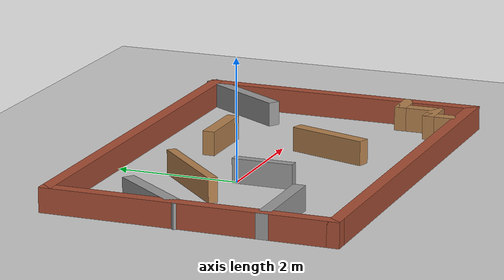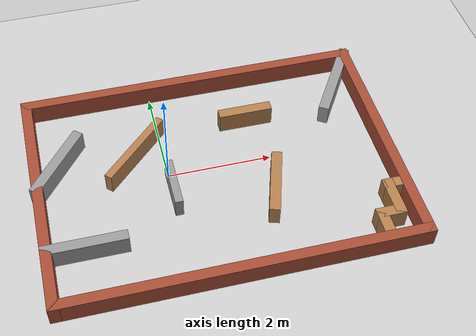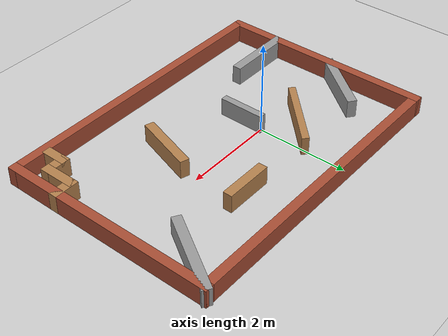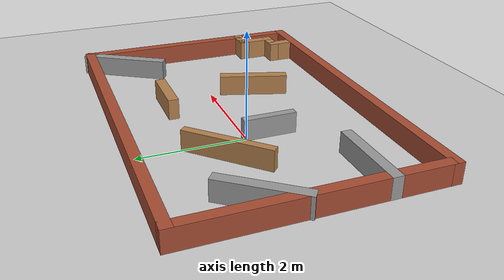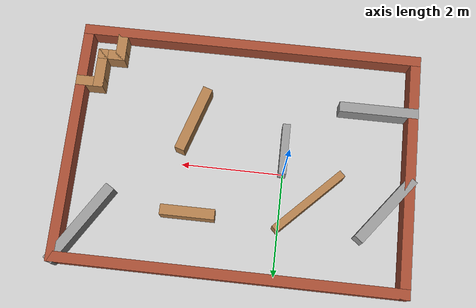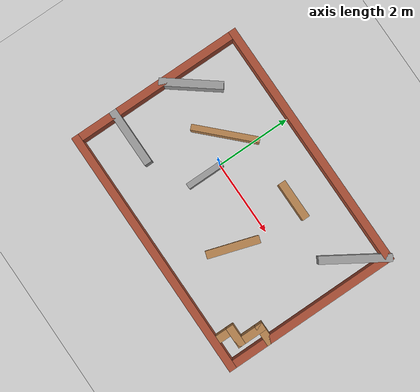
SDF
<sdf version="1.7">
 <world name="default">
  <light name="sun" type="directional">
   <pose>0 0 10 0 -0 0</pose>
   <diffuse>0.8 0.8 0.8 1</diffuse>
   <specular>0.2 0.2 0.2 1</specular>
   <attenuation>
    <range>1000</range>
    <constant>0.9</constant>
    <linear>0.01</linear>
    <quadratic>0.001</quadratic>
   </attenuation>
   <direction>-0.5 0.1 -0.9</direction>
   <spot><inner_angle>0</inner_angle><outer_angle>0</outer_angle><falloff>0</falloff></spot>
  </light>
  <model name="ground_plane">
   <static>1</static>
   <link name="link">
    <collision name="collision">
     <geometry><plane><normal>0 0 1</normal><size>100 100</size></plane></geometry>
     <surface>
      <contact><collide_bitmask>65535</collide_bitmask></contact>
      <friction><ode><mu>100</mu><mu2>50</mu2></ode></friction>
     </surface>
    </collision>
    <visual name="visual">
     <cast_shadows>0</cast_shadows>
     <geometry><plane><normal>0 0 1</normal><size>100 100</size></plane></geometry>
     <material>
      <script><uri>file://media/materials/scripts/gazebo.material</uri><name>Gazebo/Grey</name></script>
     </material>
    </visual>
   </link>
  </model>
  <gravity>0 0 -9.8</gravity>
  <magnetic_field>6e-06 2.3e-05 -4.2e-05</magnetic_field>
  <atmosphere type="adiabatic"/>
  <physics type="ode">
   <max_step_size>0.001</max_step_size>
   <real_time_factor>1</real_time_factor>
   <real_time_update_rate>0.0</real_time_update_rate>
   <max_step_size>0.003</max_step_size>
   <ode>
    <solver>
     <type>quick</type>
     <iters>150</iters>
     <precon_iters>0</precon_iters>
     <sor>1.400000</sor>
     <use_dynamic_moi_rescaling>1</use_dynamic_moi_rescaling>
    </solver>
    <constraints>
     <cfm>0.00001</cfm>
     <erp>0.2</erp>
     <contact_max_correcting_vel>2000.000000</contact_max_correcting_vel>
     <contact_surface_layer>0.01000</contact_surface_layer>
    </constraints>
   </ode>
  </physics>
  <scene><ambient>0.4 0.4 0.4 1</ambient><background>0.7 0.7 0.7 1</background><shadows>1</shadows></scene>
  <spherical_coordinates>
   <surface_model>EARTH_WGS84</surface_model>
   <latitude_deg>0</latitude_deg>
   <longitude_deg>0</longitude_deg>
   <elevation>0</elevation>
   <heading_deg>0</heading_deg>
  </spherical_coordinates>
  <model name="tie23_3">
   <pose>0.870859 1.67786 0 0 -0 0</pose>
   <link name="Wall_0">
    <collision name="Wall_0_Collision">
     <geometry><box><size>6.8 0.2 0.4</size></box></geometry>
     <pose>0 0 0.2 0 -0 0</pose>
    </collision>
    <visual name="Wall_0_Visual">
     <pose>0 0 0.2 0 -0 0</pose>
     <geometry><box><size>6.8 0.2 0.4</size></box></geometry>
     <material>
      <script><uri>file://media/materials/scripts/gazebo.material</uri><name>Gazebo/Bricks</name></script>
      <ambient>1 1 1 1</ambient>
     </material>
     <meta><layer>0</layer></meta>
    </visual>
    <pose>0.001184 0.405 0 0 -0 0</pose>
   </link>
   <link name="Wall_1">
    <collision name="Wall_1_Collision">
     <geometry><box><size>4.8 0.2 0.4</size></box></geometry>
     <pose>0 0 0.2 0 -0 0</pose>
    </collision>
    <visual name="Wall_1_Visual">
     <pose>0 0 0.2 0 -0 0</pose>
     <geometry><box><size>4.8 0.2 0.4</size></box></geometry>
     <material>
      <script><uri>file://media/materials/scripts/gazebo.material</uri><name>Gazebo/Bricks</name></script>
      <ambient>1 1 1 1</ambient>
     </material>
     <meta><layer>0</layer></meta>
    </visual>
    <pose>3.30118 -1.895 0 0 -0 -1.5708</pose>
   </link>
   <link name="Wall_13">
    <collision name="Wall_13_Collision">
     <geometry><box><size>1.59014 0.2 0.4</size></box></geometry>
     <pose>0 0 0.2 0 -0 0</pose>
    </collision>
    <visual name="Wall_13_Visual">
     <pose>0 0 0.2 0 -0 0</pose>
     <geometry><box><size>1.59014 0.2 0.4</size></box></geometry>
     <material>
      <script><uri>file://media/materials/scripts/gazebo.material</uri><name>Gazebo/Grey</name></script>
      <ambient>1 1 1 1</ambient>
     </material>
     <meta><layer>0</layer></meta>
    </visual>
    <pose>-2.87382 -1.145 0 0 -0 -2.22869</pose>
   </link>
   <link name="Wall_2">
    <collision name="Wall_2_Collision">
     <geometry><box><size>6.8 0.2 0.4</size></box></geometry>
     <pose>0 0 0.2 0 -0 0</pose>
    </collision>
    <visual name="Wall_2_Visual">
     <pose>0 0 0.2 0 -0 0</pose>
     <geometry><box><size>6.8 0.2 0.4</size></box></geometry>
     <material>
      <script><uri>file://media/materials/scripts/gazebo.material</uri><name>Gazebo/Bricks</name></script>
      <ambient>1 1 1 1</ambient>
     </material>
     <meta><layer>0</layer></meta>
    </visual>
    <pose>0.001184 -4.195 0 0 -0 3.14159</pose>
   </link>
   <link name="Wall_23">
    <collision name="Wall_23_Collision">
     <geometry><box><size>1.70564 0.15 0.4</size></box></geometry>
     <pose>0 0 0.2 0 -0 0</pose>
    </collision>
    <visual name="Wall_23_Visual">
     <pose>0 0 0.2 0 -0 0</pose>
     <geometry><box><size>1.70564 0.15 0.4</size></box></geometry>
     <material>
      <script><uri>file://media/materials/scripts/gazebo.material</uri><name>Gazebo/Wood</name></script>
      <ambient>1 1 1 1</ambient>
     </material>
     <meta><layer>0</layer></meta>
    </visual>
    <pose>-1.39882 -1.145 0 0 -0 0.785398</pose>
   </link>
   <link name="Wall_25">
    <collision name="Wall_25_Collision">
     <geometry><box><size>1 0.15 0.4</size></box></geometry>
     <pose>0 0 0.2 0 -0 0</pose>
    </collision>
    <visual name="Wall_25_Visual">
     <pose>0 0 0.2 0 -0 0</pose>
     <geometry><box><size>1 0.15 0.4</size></box></geometry>
     <material>
      <script><uri>file://media/materials/scripts/gazebo.material</uri><name>Gazebo/Grey</name></script>
      <ambient>1 1 1 1</ambient>
     </material>
     <meta><layer>0</layer></meta>
    </visual>
    <pose>-0.848816 -2.12 0 0 -0 -1.5708</pose>
   </link>
   <link name="Wall_28">
    <collision name="Wall_28_Collision">
     <geometry><box><size>1.55 0.2 0.4</size></box></geometry>
     <pose>0 0 0.2 0 -0 0</pose>
    </collision>
    <visual name="Wall_28_Visual">
     <pose>0 0 0.2 0 -0 0</pose>
     <geometry><box><size>1.55 0.2 0.4</size></box></geometry>
     <material>
      <script><uri>file://media/materials/scripts/gazebo.material</uri><name>Gazebo/Grey</name></script>
      <ambient>1 1 1 1</ambient>
     </material>
     <meta><layer>0</layer></meta>
    </visual>
    <pose>-2.62382 -3.095 0 0 -0 0</pose>
   </link>
   <link name="Wall_3">
    <collision name="Wall_3_Collision">
     <geometry><box><size>4.8 0.2 0.4</size></box></geometry>
     <pose>0 0 0.2 0 -0 0</pose>
    </collision>
    <visual name="Wall_3_Visual">
     <pose>0 0 0.2 0 -0 0</pose>
     <geometry><box><size>4.8 0.2 0.4</size></box></geometry>
     <material>
      <script><uri>file://media/materials/scripts/gazebo.material</uri><name>Gazebo/Bricks</name></script>
      <ambient>1 1 1 1</ambient>
     </material>
     <meta><layer>0</layer></meta>
    </visual>
    <pose>-3.29882 -1.895 0 0 -0 1.5708</pose>
   </link>
   <link name="Wall_32">
    <collision name="Wall_32_Collision">
     <geometry><box><size>1.05 0.2 0.4</size></box></geometry>
     <pose>0 0 0.2 0 -0 0</pose>
    </collision>
    <visual name="Wall_32_Visual">
     <pose>0 0 0.2 0 -0 0</pose>
     <geometry><box><size>1.05 0.2 0.4</size></box></geometry>
     <material>
      <script><uri>file://media/materials/scripts/gazebo.material</uri><name>Gazebo/Wood</name></script>
      <ambient>1 1 1 1</ambient>
     </material>
     <meta><layer>0</layer></meta>
    </visual>
    <pose>0.876184 -0.695 0 0 -0 3.14159</pose>
   </link>
   <link name="Wall_36">
    <collision name="Wall_36_Collision">
     <geometry><box><size>1.79531 0.2 0.4</size></box></geometry>
     <pose>0 0 0.2 0 -0 0</pose>
    </collision>
    <visual name="Wall_36_Visual">
     <pose>0 0 0.2 0 -0 0</pose>
     <geometry><box><size>1.79531 0.2 0.4</size></box></geometry>
     <material>
      <script><uri>file://media/materials/scripts/gazebo.material</uri><name>Gazebo/Grey</name></script>
      <ambient>1 1 1 1</ambient>
     </material>
     <meta><layer>0</layer></meta>
    </visual>
    <pose>2.87618 -0.27 0 0 -0 1.00887</pose>
   </link>
   <link name="Wall_39">
    <collision name="Wall_39_Collision">
     <geometry><box><size>0.55 0.2 0.4</size></box></geometry>
     <pose>0 0 0.2 0 -0 0</pose>
    </collision>
    <visual name="Wall_39_Visual">
     <pose>0 0 0.2 0 -0 0</pose>
     <geometry><box><size>0.55 0.2 0.4</size></box></geometry>
     <material>
      <script><uri>file://media/materials/scripts/gazebo.material</uri><name>Gazebo/Wood</name></script>
      <ambient>1 1 1 1</ambient>
     </material>
     <meta><layer>0</layer></meta>
    </visual>
    <pose>3.12618 -3.095 0 0 -0 3.14159</pose>
   </link>
   <link name="Wall_40">
    <collision name="Wall_40_Collision">
     <geometry><box><size>0.8 0.2 0.4</size></box></geometry>
     <pose>0 0 0.2 0 -0 0</pose>
    </collision>
    <visual name="Wall_40_Visual">
     <pose>0 0 0.2 0 -0 0</pose>
     <geometry><box><size>0.8 0.2 0.4</size></box></geometry>
     <material>
      <script><uri>file://media/materials/scripts/gazebo.material</uri><name>Gazebo/Wood</name></script>
      <ambient>1 1 1 1</ambient>
     </material>
     <meta><layer>0</layer></meta>
    </visual>
    <pose>2.95118 -3.395 0 0 -0 -1.5708</pose>
   </link>
   <link name="Wall_41">
    <collision name="Wall_41_Collision">
     <geometry><box><size>0.55 0.2 0.4</size></box></geometry>
     <pose>0 0 0.2 0 -0 0</pose>
    </collision>
    <visual name="Wall_41_Visual">
     <pose>0 0 0.2 0 -0 0</pose>
     <geometry><box><size>0.55 0.2 0.4</size></box></geometry>
     <material>
      <script><uri>file://media/materials/scripts/gazebo.material</uri><name>Gazebo/Wood</name></script>
      <ambient>1 1 1 1</ambient>
     </material>
     <meta><layer>0</layer></meta>
    </visual>
    <pose>2.77618 -3.695 0 0 -0 3.14159</pose>
   </link>
   <link name="Wall_42">
    <collision name="Wall_42_Collision">
     <geometry><box><size>0.55 0.2 0.4</size></box></geometry>
     <pose>0 0 0.2 0 -0 0</pose>
    </collision>
    <visual name="Wall_42_Visual">
     <pose>0 0 0.2 0 -0 0</pose>
     <geometry><box><size>0.55 0.2 0.4</size></box></geometry>
     <material>
      <script><uri>file://media/materials/scripts/gazebo.material</uri><name>Gazebo/Wood</name></script>
      <ambient>1 1 1 1</ambient>
     </material>
     <meta><layer>0</layer></meta>
    </visual>
    <pose>2.60118 -3.87 0 0 -0 -1.5708</pose>
   </link>
   <link name="Wall_48">
    <collision name="Wall_48_Collision">
     <geometry><box><size>1.35434 0.2 0.4</size></box></geometry>
     <pose>0 0 0.2 0 -0 0</pose>
    </collision>
    <visual name="Wall_48_Visual">
     <pose>0 0 0.2 0 -0 0</pose>
     <geometry><box><size>1.35434 0.2 0.4</size></box></geometry>
     <material>
      <script><uri>file://media/materials/scripts/gazebo.material</uri><name>Gazebo/Wood</name></script>
      <ambient>1 1 1 1</ambient>
     </material>
     <meta><layer>0</layer></meta>
    </visual>
    <pose>0.976184 -2.545 0 0 -0 -1.87885</pose>
   </link>
   <static>1</static>
  </model>
 </world>
</sdf>
